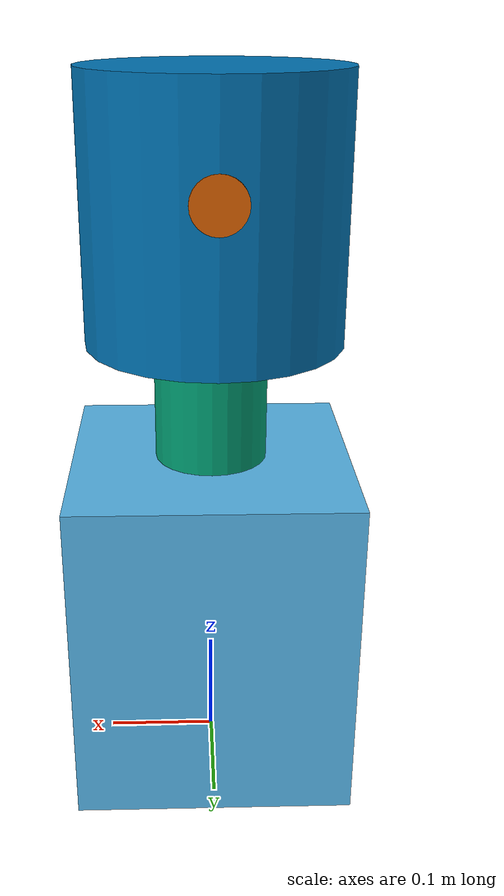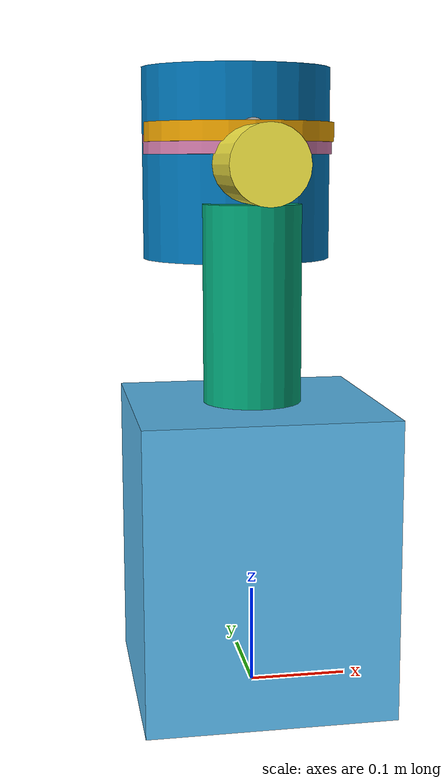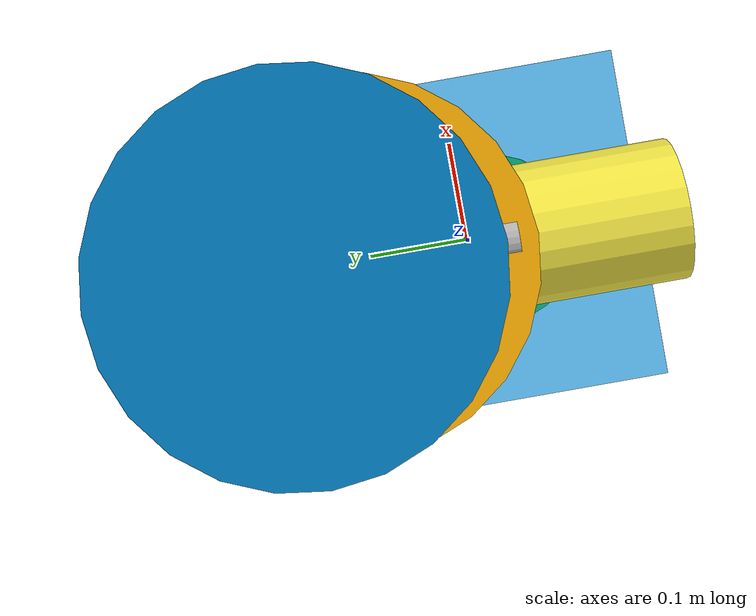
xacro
<?xml version="1.0"?>
<robot name="sad_robot" xmlns:xacro="http://www.ros.org/wiki/xacro">

<xacro:property name="hardware_interface" value="hardware_interface/PositionJointInterface"/>

    <link name="world"/>
    <joint name="base_fixed_joint" type="fixed" disable_fixed_joint_lumping="true">
        <origin rpy="0 0 0" xyz="0 0 0"/>
        <parent link="world"/>
        <child link="base_link"/>
    </joint>

    <link name="base_link" selfCollide="false">
        <inertial>
            <mass value="1.0"/>
            <inertia ixx="0.01" ixy="0" ixz="0" iyy="0.01" iyz="0" izz="0.01" />
        </inertial>
        <collision>
            <origin xyz="0 0 0.151"/>
            <geometry>
                <box size = "0.25 0.25 0.302"></box>
            </geometry>
        </collision>
        <visual>
            <origin xyz="0 0 0.151"/>
            <geometry>
                <box size = "0.25 0.25 0.302"></box>
            </geometry>
        </visual>
    </link>
    <link name="link1" selfCollide="false">
        <inertial>
            <mass value="1.0"/>
            <inertia ixx="0.01" ixy="0" ixz="0" iyy="0.01" iyz="0" izz="0.01" />
        </inertial>
        <collision>
            <geometry>
                <cylinder radius="0.05" length="0.2"/>
            </geometry>
        </collision>
        <visual>
            <geometry>
                <cylinder radius="0.05" length="0.2"/>
            </geometry>
        </visual>
    </link>
    <link name="link2" selfCollide="false">
        <inertial>
            <mass value="1.0"/>
            <inertia ixx="0.01" ixy="0" ixz="0" iyy="0.01" iyz="0" izz="0.01" />
        </inertial>
        <collision>
            <geometry>
                <cylinder radius="0.039" length="0.2"/>
            </geometry>
        </collision>
        <visual>
            <geometry>
                <cylinder radius="0.039" length="0.2"/>
            </geometry>
        </visual>
    </link>
    <link name="link3" selfCollide="false">
        <inertial>
            <mass value="1.0"/>
            <inertia ixx="0.01" ixy="0" ixz="0" iyy="0.01" iyz="0" izz="0.01" />
        </inertial>
        <collision>
            <geometry>
                <cylinder radius="0.1" length="0.2"/>
            </geometry>
        </collision>
        <visual>
            <geometry>
                <cylinder radius="0.1" length="0.2"/>
            </geometry>
        </visual>
    </link>
    <link name="link4" selfCollide="false">
        <inertial>
            <mass value="1.0"/>
            <inertia ixx="0.01" ixy="0" ixz="0" iyy="0.01" iyz="0" izz="0.01" />
        </inertial>
        <collision>
            <geometry>
                <cylinder radius="0.02025" length="0.2"/>
            </geometry>
        </collision>
        <visual>
            <geometry>
                <cylinder radius="0.02025" length="0.2"/>
            </geometry>
        </visual>
    </link>
    <link name="link5" selfCollide="false">
        <inertial>
            <mass value="1.0"/>
            <inertia ixx="0.01" ixy="0" ixz="0" iyy="0.01" iyz="0" izz="0.01" />
        </inertial>
        <collision>
            <geometry>
                <cylinder radius="0.1" length="0.02"/>
            </geometry>
        </collision>
        <visual>
            <geometry>
                <cylinder radius="0.1" length="0.02"/>
            </geometry>
        </visual>
    </link>
    <link name="link6" selfCollide="false">
        <inertial>
            <mass value="1.0"/>
            <inertia ixx="0.01" ixy="0" ixz="0" iyy="0.01" iyz="0" izz="0.01" />
        </inertial>
        <collision>
            <geometry>
                <cylinder radius="0.01275" length="0.2"/>
            </geometry>
        </collision>
        <visual>
            <geometry>
                <cylinder radius="0.01275" length="0.2"/>
            </geometry>
        </visual>
    </link>
    <link name="link7" selfCollide="false">
        <inertial>
            <mass value="1.0"/>
            <inertia ixx="0.01" ixy="0" ixz="0" iyy="0.01" iyz="0" izz="0.1" />
        </inertial>
        <collision>
            <geometry>
                <cylinder radius="0.1" length="0.02"/>
            </geometry>
        </collision>
        <visual>
            <geometry>
                <cylinder radius="0.1" length="0.02"/>
            </geometry>
        </visual>
    </link>
    <link name="link8" selfCollide="false">
        <inertial>
            <mass value="1.0"/>
            <inertia ixx="0.01" ixy="0" ixz="0" iyy="0.01" iyz="0" izz="0.01" />
        </inertial>
        <collision>
            <geometry>
                <cylinder radius="0.01" length="0.14"/>
            </geometry>
        </collision>
        <visual>
            <geometry>
                <cylinder radius="0.01" length="0.14"/>
            </geometry>
        </visual>
    </link>

    <joint name="joint1" type="revolute">
        <parent link="base_link"/>
        <child link="link1"/>
        <origin rpy="0.0 0.0 0.0" xyz="0.0 0.0 0.402"/>
        <axis xyz="0 0 1" />
        <limit effort="1000.0" velocity="0.1" lower="-1.57" upper="1.57" />
        <dynamics damping="100" friction="50" />
    </joint>
    <joint name="joint2" type="revolute">
        <parent link="link1"/>
        <child link="link2"/>
        <origin rpy="-1.5707963267948966 0.0 0.0" xyz="0.0 0.0 0.139"/>
        <axis xyz="0 0 1" />
        <limit effort="1000.0" velocity="0.1" lower="-1.57" upper="1.57" />
        <dynamics damping="100" friction="50" />
    </joint>
    <joint name="joint3" type="revolute">
        <parent link="link2"/>
        <child link="link3"/>
        <origin rpy="1.5707963267948966 0.0 0.0" xyz="0.0 0.0 0.1"/>
        <axis xyz="0 0 1" />
        <limit effort="1000.0" velocity="0.1" lower="-1.57" upper="1.57" />
        <dynamics damping="100" friction="50" />
    </joint>
    <joint name="joint4" type="revolute">
        <parent link="link3"/>
        <child link="link4"/>
        <origin rpy="1.5707963267948966 0.0 0.0" xyz="0.0 0.0 0.02025"/>
        <axis xyz="0 0 1" />
        <limit effort="1000.0" velocity="0.1" lower="-1.57" upper="1.57" />
        <dynamics damping="100" friction="50" />
    </joint>
    <joint name="joint5" type="revolute">
        <parent link="link4"/>
        <child link="link5"/>
        <origin rpy="-1.5707963267948966 0.0 0.0" xyz="0.0 0.0 0.01"/>
        <axis xyz="0 0 1" />
        <limit effort="1000.0" velocity="0.1" lower="-1.57" upper="1.57" />
        <dynamics damping="100" friction="50" />
    </joint>
    <joint name="joint6" type="revolute">
        <parent link="link5"/>
        <child link="link6"/>
        <origin rpy="1.5707963267948966 0.0 0.0" xyz="0.0 0.0 0.01275"/>
        <axis xyz="0 0 1" />
        <limit effort="1000.0" velocity="0.1" lower="-1.57" upper="1.57" />
        <dynamics damping="100" friction="50" />
    </joint>
    <joint name="joint7" type="revolute">
        <parent link="link6"/>
        <child link="link7"/>
        <origin rpy="1.5707963267948966 0.0 0.0" xyz="0.0 0.0 0.01"/>
        <axis xyz="0 0 1" />
        <limit effort="1000.0" velocity="0.1" lower="-1.57" upper="1.57" />
        <dynamics damping="100" friction="50" />
    </joint>
    <joint name="joint8" type="revolute">
        <parent link="link7"/>
        <child link="link8"/>
        <origin rpy="1.5707963267948966 0.0 0.0" xyz="0.0 0.0 0.01"/>
        <axis xyz="0 0 1" />
        <limit effort="1000.0" velocity="0.1" lower="-1.57" upper="1.57" />
        <dynamics damping="100" friction="50" />
    </joint>
</robot>
